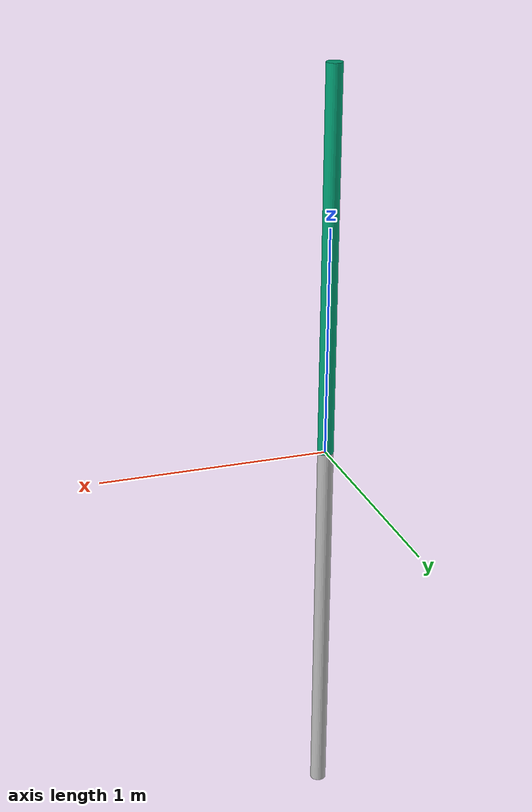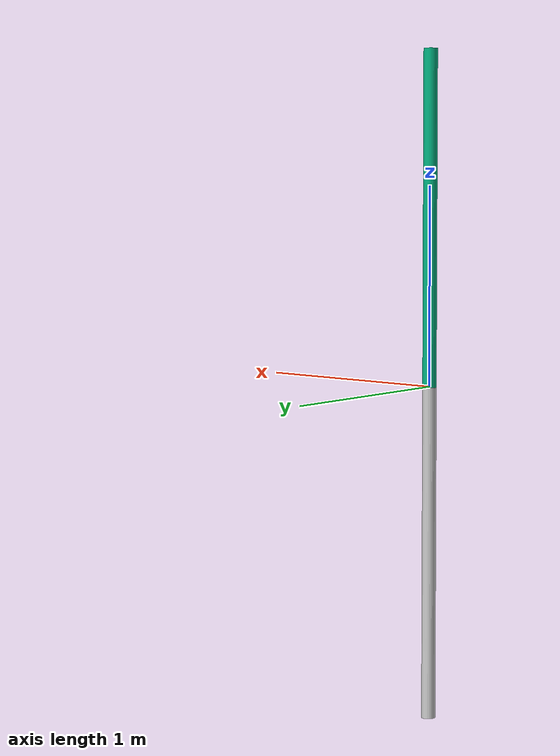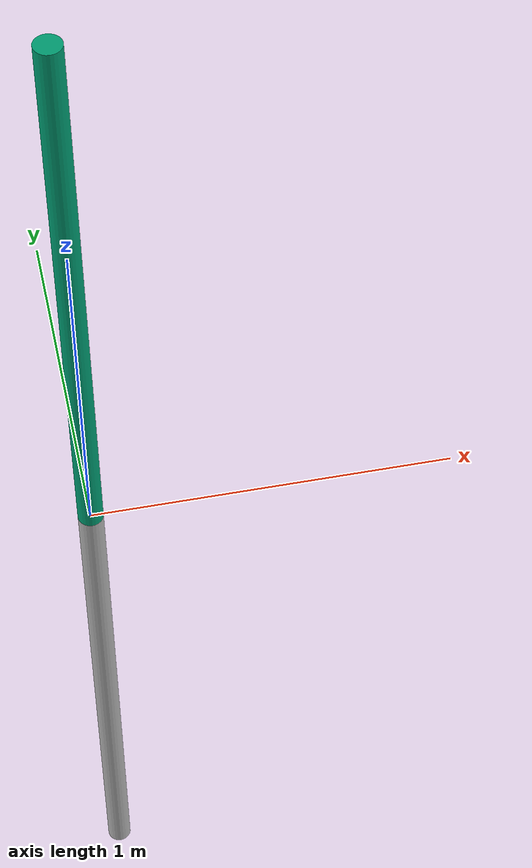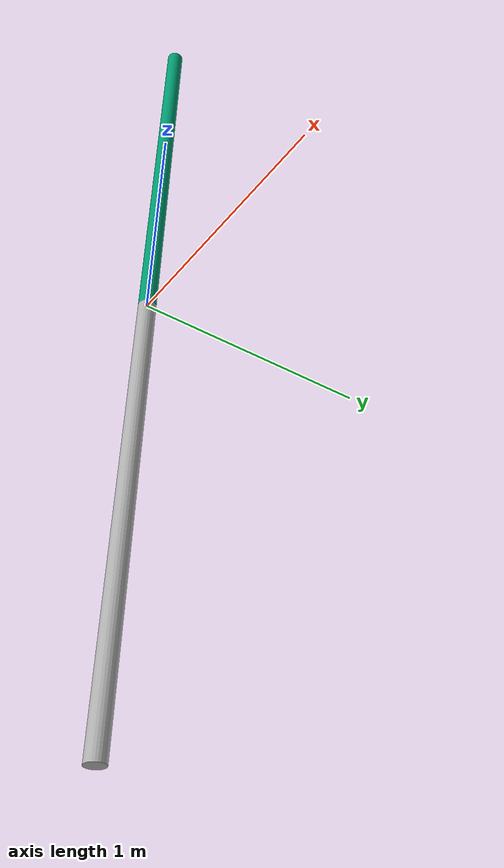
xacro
<?xml version="1.0"?>
<robot xmlns:xacro="http://www.ros.org/wiki/xacro" name="pole">
  <xacro:property name="PI" value="3.1415926535897931" />
  <xacro:property name="pole_l" value="3.3528" />
  <xacro:property name="pole_r" value="0.035" />

  <xacro:property name="cartesian_joint_effort_main" value="1"/>
  <xacro:property name="spherical_joint_effort_main" value="10000"/>

  <xacro:property name="num_cylindrical_links" value="2" />

  <xacro:if value="${num_cylindrical_links % 2 == 0}">
    <xacro:property name="num_spherical_joints" value="${num_cylindrical_links}" />
  </xacro:if>
  <xacro:unless value="${num_cylindrical_links % 2 == 0}">
    <xacro:property name="num_spherical_joints" value="${num_cylindrical_links - 1}" />
  </xacro:unless>

  <xacro:property name="total_bend_limit" value="${PI}" />

  <xacro:property name="spherical_joint_limit" value="${total_bend_limit/(num_spherical_joints-1)}"/>
  <xacro:property name="spherical_joint_effort" value="1"/>

  <!-- Link Lengths -->
  <xacro:property name="length" value="${pole_l/num_cylindrical_links}"/>

  <!-- Include statements for macros -->
  <xacro:include filename="cartesian_joint_macro.xacro"/>
  <xacro:include filename="spherical_joint_macro.xacro"/>
  <xacro:include filename="cylindrical_link_macro.xacro"/>

  <!-- Base link -->
  <link name="base_link"/>

  <!-- Instantiate the MAIN Cartesian Joint Macro -->
  <xacro:cartesian_joint prefix="cartesian" lower_limit="-3" upper_limit="3" effort="${cartesian_joint_effort_main}" velocity="1.5"/>

  <!-- Instantiate the MAIN Spherical Joint Macro -->
  <xacro:spherical_joint prefix="spherical" lower_limit="-${PI}" upper_limit="${PI}" effort="${spherical_joint_effort_main}" velocity="${PI/2}"/>

  <!-- Tool link is where the tip of the combined cartesian + spherical joints is at -->
  <link name="tool0"/>

  <!-- Connections between components -->

  <!-- Connect Cartesian joint system to the base -->
  <joint name="base_to_cartesian" type="fixed">
    <origin xyz="0 0 0" rpy="0 0 0"/>
    <parent link="base_link"/>
    <child link="cartesian_parent_link"/>
  </joint>

  <!-- Connect spherical joint to the top of the cartesian joint -->
  <joint name="cartesian_to_spherical" type="fixed">
    <origin xyz="0 0 0" rpy="0 0 0"/>
    <parent link="cartesian_z_link"/>
    <child link="spherical_parent_link"/>
  </joint>

  <!-- Connect the tool link with the the tip of the combined cartesian + spherical joints -->
  <joint name="spherical_to_tool0" type="fixed">
    <origin xyz="0 0 0" rpy="0 0 0"/>
    <parent link="spherical_roll_link"/>
    <child link="tool0"/>
  </joint>

  <!-- Add a link from tool0 to left -->
  <link name="link_left_1_root">
    <visual>
        <geometry>
            <cylinder length="${length}" radius="${pole_r}"/>
        </geometry>
        <origin xyz="0 0 ${length / 2}" rpy="0 0 0"/>
        <material name="teal"/>
    </visual>
    <collision>
        <geometry>
            <cylinder length="${length}" radius="${pole_r}"/>
        </geometry>
        <origin xyz="0 0 ${length / 2}" rpy="0 0 0"/>
    </collision>
  </link>

  <!-- Connect tool0 to the root of left link -->
  <joint name="tool0_to_link_left_1_root" type="fixed">
    <origin xyz="0 0 0" rpy="0 0 0"/>
    <parent link="tool0"/>
    <child link="link_left_1_root"/>
  </joint>

  <!-- Define the tip of the left link -->
  <link name="link_left_1_tip"/>

  <!-- Connect the tip to the root with a fixed joint -->
  <joint name="joint_link_left_1_root_to_tip" type="fixed">
    <origin xyz="0 0 ${length}" rpy="0 0 0"/>
    <parent link="link_left_1_root"/>
    <child link="link_left_1_tip"/>
  </joint>

  <!-- Define another link to come back to the root -->
  <link name="link_left_1_root_back"/>

  <!-- Connect the tip to the root with a fixed joint -->
  <joint name="joint_link_left_1_tip_to_root_back" type="fixed">
    <origin xyz="0 0 -${length}" rpy="0 0 0"/>
    <parent link="link_left_1_tip"/>
    <child link="link_left_1_root_back"/>
  </joint>

  <!-- Define the spherical joint -->

  <link name="link_yaw"/>

  <!-- Revolute joint around Z-axis -->
  <joint name="joint_yaw" type="revolute">
      <origin xyz="0 0 0" rpy="0 0 0"/>
      <parent link="link_left_1_root_back"/>
      <child link="link_yaw"/>
      <axis xyz="0 0 1"/>
      <limit lower="-${spherical_joint_limit/2.0}" upper="${spherical_joint_limit/2.0}" effort="${spherical_joint_effort}" velocity="${PI/2}"/>
  </joint>

  <link name="link_pitch"/>

  <!-- Revolute joint around Y-axis -->
  <joint name="joint_pitch" type="revolute">
      <origin xyz="0 0 0" rpy="0 0 0"/>
      <parent link="link_yaw"/>
      <child link="link_pitch"/>
      <axis xyz="0 1 0"/>
      <limit lower="-${spherical_joint_limit/2.0}" upper="${spherical_joint_limit/2.0}" effort="${spherical_joint_effort}" velocity="${PI/2}"/>
  </joint>

  <!-- Add a link from the root back to right -->
  <link name="link_right_1_root">
    <visual>
        <geometry>
            <cylinder length="${length}" radius="${pole_r}"/>
        </geometry>
        <origin xyz="0 0 -${length / 2}" rpy="0 0 0"/>
        <material name="teal"/>
    </visual>
    <collision>
        <geometry>
            <cylinder length="${length}" radius="${pole_r}"/>
        </geometry>
        <origin xyz="0 0 -${length / 2}" rpy="0 0 0"/>
    </collision>
  </link>

  <!-- Connect the root back to the right link with a revolute joint from the x axis-->
  <joint name="joint_link_left_1_root_back_to_right_1_root" type="revolute">
    <origin xyz="0 0 0" rpy="0 0 0"/>
    <parent link="link_pitch"/>
    <child link="link_right_1_root"/>
    <axis xyz="1 0 0"/>
    <limit lower="-${spherical_joint_limit/2.0}" upper="${spherical_joint_limit/2.0}" effort="${spherical_joint_effort}" velocity="${PI/2}"/>
  </joint>

  <!-- Define the tip of the right link -->
  <link name="link_right_1_tip"/>

  <!-- Connect the tip to the root with a fixed joint -->
  <joint name="joint_link_right_1_root_to_tip" type="fixed">
    <origin xyz="0 0 -${length}" rpy="0 0 0"/>
    <parent link="link_right_1_root"/>
    <child link="link_right_1_tip"/>
  </joint>

  <!-- Define another link to come back to the root -->
  <link name="link_right_1_root_back"/>

  <!-- Connect the tip to the root with a fixed joint -->
  <joint name="joint_link_right_1_tip_to_root_back" type="fixed">
    <origin xyz="0 0 ${length}" rpy="0 0 0"/>
    <parent link="link_right_1_tip"/>
    <child link="link_right_1_root_back"/>
  </joint>

  <!-- Define final tool as tool1 link -->
  <link name="tool1"/>

  <!-- Connect the right root back to the tool1 link -->
  <joint name="joint_link_right_1_root_back_to_tool1" type="fixed">
    <origin xyz="0 0 0" rpy="0 0 0"/>
    <parent link="link_right_1_root_back"/>
    <child link="tool1"/>
  </joint>

</robot>

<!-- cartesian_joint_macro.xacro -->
<robot xmlns:xacro="http://www.ros.org/wiki/xacro">
    <xacro:macro name="cartesian_joint" params="prefix lower_limit upper_limit effort velocity">
        <!-- Definition of links -->
        <link name="${prefix}_parent_link"/>
        <link name="${prefix}_x_link"/>
        <link name="${prefix}_y_link"/>
        <link name="${prefix}_z_link"/>

        <!-- Prismatic joint along X-axis -->
        <joint name="${prefix}_x_joint" type="prismatic">
            <origin xyz="0 0 0" rpy="0 0 0"/>
            <parent link="${prefix}_parent_link"/>
            <child link="${prefix}_x_link"/>
            <axis xyz="1 0 0"/>
            <limit lower="${lower_limit}" upper="${upper_limit}" effort="${effort}" velocity="${velocity}"/>
        </joint>

        <!-- Prismatic joint along Y-axis -->
        <joint name="${prefix}_y_joint" type="prismatic">
            <origin xyz="0 0 0" rpy="0 0 0"/>
            <parent link="${prefix}_x_link"/>
            <child link="${prefix}_y_link"/>
            <axis xyz="0 1 0"/>
            <limit lower="${lower_limit}" upper="${upper_limit}" effort="${effort}" velocity="${velocity}"/>
        </joint>

        <!-- Prismatic joint along Z-axis -->
        <joint name="${prefix}_z_joint" type="prismatic">
            <origin xyz="0 0 0" rpy="0 0 0"/>
            <parent link="${prefix}_y_link"/>
            <child link="${prefix}_z_link"/>
            <axis xyz="0 0 1"/>
            <limit lower="${lower_limit}" upper="${upper_limit}" effort="${effort}" velocity="${velocity}"/>
        </joint>
    </xacro:macro>
</robot>

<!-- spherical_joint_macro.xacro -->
<robot xmlns:xacro="http://www.ros.org/wiki/xacro">
    <xacro:macro name="spherical_joint" params="prefix lower_limit upper_limit effort velocity">
        <!-- Definition of links -->
        <link name="${prefix}_parent_link"/>
        <link name="${prefix}_roll_link"/>
        <link name="${prefix}_pitch_link"/>
        <link name="${prefix}_yaw_link"/>

        <!-- Revolute joint around Z-axis -->
        <joint name="${prefix}_yaw_joint" type="revolute">
            <origin xyz="0 0 0" rpy="0 0 0"/>
            <parent link="${prefix}_parent_link"/>
            <child link="${prefix}_yaw_link"/>
            <axis xyz="0 0 1"/>
            <limit lower="${lower_limit}" upper="${upper_limit}" effort="${effort}" velocity="${velocity}"/>
        </joint>

        <!-- Revolute joint around Y-axis -->
        <joint name="${prefix}_pitch_joint" type="revolute">
            <origin xyz="0 0 0" rpy="0 0 0"/>
            <parent link="${prefix}_yaw_link"/>
            <child link="${prefix}_pitch_link"/>
            <axis xyz="0 1 0"/>
            <limit lower="${lower_limit}" upper="${upper_limit}" effort="${effort}" velocity="${velocity}"/>
        </joint>

        <!-- Revolute joint around X-axis -->
        <joint name="${prefix}_roll_joint" type="revolute">
            <origin xyz="0 0 0" rpy="0 0 0"/>
            <parent link="${prefix}_pitch_link"/>
            <child link="${prefix}_roll_link"/>
            <axis xyz="1 0 0"/>
            <limit lower="${lower_limit}" upper="${upper_limit}" effort="${effort}" velocity="${velocity}"/>
        </joint>

    </xacro:macro>
</robot>
